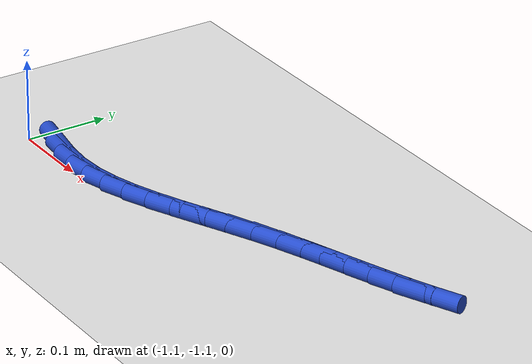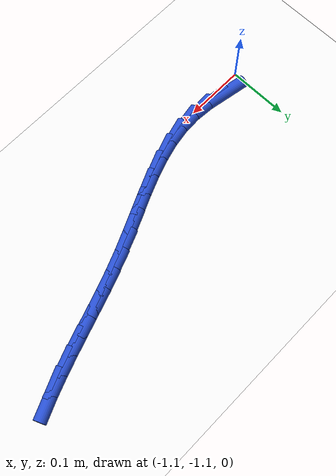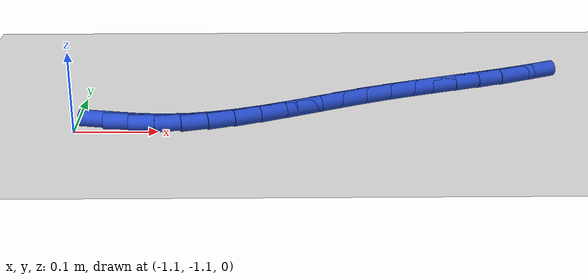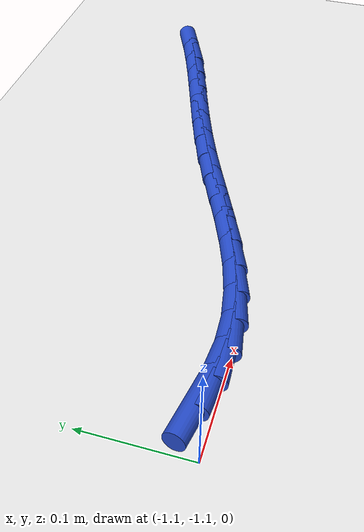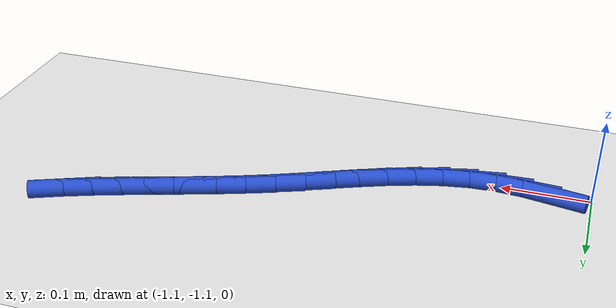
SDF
<sdf version="1.6">
 <world name="default">
  <model name="ground_plane">
   <static>1</static>
   <link name="link">
    <collision name="collision">
     <geometry><plane><normal>0 0 1</normal><size>100 100</size></plane></geometry>
     <surface><friction><ode><mu>100</mu><mu2>50</mu2></ode></friction></surface>
    </collision>
    <visual name="visual">
     <cast_shadows>0</cast_shadows>
     <geometry><plane><normal>0 0 1</normal><size>100 100</size></plane></geometry>
     <material>
      <script><uri>file://media/materials/scripts/gazebo.material</uri><name>Gazebo/WhiteGlow</name></script>
     </material>
    </visual>
   </link>
  </model>
  <model name="line">
   <link name="link_158">
    <pose>-1.05572384325815 -1.0857239371410612 0.01 0 1.57 -0.1781901428890386</pose>
    <collision name="collision">
     <geometry><cylinder><radius>0.01</radius><length>0.08</length></cylinder></geometry>
    </collision>
    <visual name="visual">
     <material>
      <script><name>Gazebo/Blue</name><uri>file://media/materials/scripts/gazebo.material</uri></script>
     </material>
     <geometry><cylinder><radius>0.01</radius><length>0.08</length></cylinder></geometry>
    </visual>
   </link>
   <link name="link_159">
    <pose>-1.0254811928255287 -1.0911706492456716 0.01 0 1.57 -0.07670855358000453</pose>
    <collision name="collision">
     <geometry><cylinder><radius>0.01</radius><length>0.08</length></cylinder></geometry>
    </collision>
    <visual name="visual">
     <material>
      <script><name>Gazebo/Blue</name><uri>file://media/materials/scripts/gazebo.material</uri></script>
     </material>
     <geometry><cylinder><radius>0.01</radius><length>0.08</length></cylinder></geometry>
    </visual>
   </link>
   <link name="link_160">
    <pose>-0.9953458273609315 -1.0934868342922237 0.01 0 1.57 0.04758001162439082</pose>
    <collision name="collision">
     <geometry><cylinder><radius>0.01</radius><length>0.08</length></cylinder></geometry>
    </collision>
    <visual name="visual">
     <material>
      <script><name>Gazebo/Blue</name><uri>file://media/materials/scripts/gazebo.material</uri></script>
     </material>
     <geometry><cylinder><radius>0.01</radius><length>0.08</length></cylinder></geometry>
    </visual>
   </link>
   <link name="link_161">
    <pose>-0.9652623973059331 -1.0920543832222926 0.01 0 1.57 0.1720860309842788</pose>
    <collision name="collision">
     <geometry><cylinder><radius>0.01</radius><length>0.08</length></cylinder></geometry>
    </collision>
    <visual name="visual">
     <material>
      <script><name>Gazebo/Blue</name><uri>file://media/materials/scripts/gazebo.material</uri></script>
     </material>
     <geometry><cylinder><radius>0.01</radius><length>0.08</length></cylinder></geometry>
    </visual>
   </link>
   <link name="link_162">
    <pose>-0.9351853055738792 -1.086826831507159 0.01 0 1.57 0.27098880094912264</pose>
    <collision name="collision">
     <geometry><cylinder><radius>0.01</radius><length>0.08</length></cylinder></geometry>
    </collision>
    <visual name="visual">
     <material>
      <script><name>Gazebo/Blue</name><uri>file://media/materials/scripts/gazebo.material</uri></script>
     </material>
     <geometry><cylinder><radius>0.01</radius><length>0.08</length></cylinder></geometry>
    </visual>
   </link>
   <link name="link_163">
    <pose>-0.9050809902659295 -1.0784631613435738 0.01 0 1.57 0.34373627839405074</pose>
    <collision name="collision">
     <geometry><cylinder><radius>0.01</radius><length>0.08</length></cylinder></geometry>
    </collision>
    <visual name="visual">
     <material>
      <script><name>Gazebo/Blue</name><uri>file://media/materials/scripts/gazebo.material</uri></script>
     </material>
     <geometry><cylinder><radius>0.01</radius><length>0.08</length></cylinder></geometry>
    </visual>
   </link>
   <link name="link_164">
    <pose>-0.8749166331043774 -1.0676659425401012 0.01 0 1.57 0.392565017161705</pose>
    <collision name="collision">
     <geometry><cylinder><radius>0.01</radius><length>0.08</length></cylinder></geometry>
    </collision>
    <visual name="visual">
     <material>
      <script><name>Gazebo/Blue</name><uri>file://media/materials/scripts/gazebo.material</uri></script>
     </material>
     <geometry><cylinder><radius>0.01</radius><length>0.08</length></cylinder></geometry>
    </visual>
   </link>
   <link name="link_165">
    <pose>-0.8446594158115183 -1.0551377449053065 0.01 0 1.57 0.4196827271843263</pose>
    <collision name="collision">
     <geometry><cylinder><radius>0.01</radius><length>0.08</length></cylinder></geometry>
    </collision>
    <visual name="visual">
     <material>
      <script><name>Gazebo/Blue</name><uri>file://media/materials/scripts/gazebo.material</uri></script>
     </material>
     <geometry><cylinder><radius>0.01</radius><length>0.08</length></cylinder></geometry>
    </visual>
   </link>
   <link name="link_166">
    <pose>-0.8142765201096458 -1.0415811382477542 0.01 0 1.57 0.42662735164104176</pose>
    <collision name="collision">
     <geometry><cylinder><radius>0.01</radius><length>0.08</length></cylinder></geometry>
    </collision>
    <visual name="visual">
     <material>
      <script><name>Gazebo/Blue</name><uri>file://media/materials/scripts/gazebo.material</uri></script>
     </material>
     <geometry><cylinder><radius>0.01</radius><length>0.08</length></cylinder></geometry>
    </visual>
   </link>
   <link name="link_167">
    <pose>-0.7837351277210541 -1.0276986923760094 0.01 0 1.57 0.41405218185598236</pose>
    <collision name="collision">
     <geometry><cylinder><radius>0.01</radius><length>0.08</length></cylinder></geometry>
    </collision>
    <visual name="visual">
     <material>
      <script><name>Gazebo/Blue</name><uri>file://media/materials/scripts/gazebo.material</uri></script>
     </material>
     <geometry><cylinder><radius>0.01</radius><length>0.08</length></cylinder></geometry>
    </visual>
   </link>
   <link name="link_168">
    <pose>-0.7530024203680372 -1.014192977098636 0.01 0 1.57 0.3838151236802919</pose>
    <collision name="collision">
     <geometry><cylinder><radius>0.01</radius><length>0.08</length></cylinder></geometry>
    </collision>
    <visual name="visual">
     <material>
      <script><name>Gazebo/Blue</name><uri>file://media/materials/scripts/gazebo.material</uri></script>
     </material>
     <geometry><cylinder><radius>0.01</radius><length>0.08</length></cylinder></geometry>
    </visual>
   </link>
   <link name="link_169">
    <pose>-0.7220573966785082 -1.0016960382665037 0.01 0 1.57 0.35414782322649935</pose>
    <collision name="collision">
     <geometry><cylinder><radius>0.01</radius><length>0.08</length></cylinder></geometry>
    </collision>
    <visual name="visual">
     <material>
      <script><name>Gazebo/Blue</name><uri>file://media/materials/scripts/gazebo.material</uri></script>
     </material>
     <geometry><cylinder><radius>0.01</radius><length>0.08</length></cylinder></geometry>
    </visual>
   </link>
   <link name="link_170">
    <pose>-0.690985029635339 -0.9902074608167016 0.01 0 1.57 0.33506101901091545</pose>
    <collision name="collision">
     <geometry><cylinder><radius>0.01</radius><length>0.08</length></cylinder></geometry>
    </collision>
    <visual name="visual">
     <material>
      <script><name>Gazebo/Blue</name><uri>file://media/materials/scripts/gazebo.material</uri></script>
     </material>
     <geometry><cylinder><radius>0.01</radius><length>0.08</length></cylinder></geometry>
    </visual>
   </link>
   <link name="link_171">
    <pose>-0.6599262106705068 -0.9793931052354287 0.01 0 1.57 0.32686704129674615</pose>
    <collision name="collision">
     <geometry><cylinder><radius>0.01</radius><length>0.08</length></cylinder></geometry>
    </collision>
    <visual name="visual">
     <material>
      <script><name>Gazebo/Blue</name><uri>file://media/materials/scripts/gazebo.material</uri></script>
     </material>
     <geometry><cylinder><radius>0.01</radius><length>0.08</length></cylinder></geometry>
    </visual>
   </link>
   <link name="link_172">
    <pose>-0.6290223352887473 -0.9689158236742884 0.01 0 1.57 0.3298103032573491</pose>
    <collision name="collision">
     <geometry><cylinder><radius>0.01</radius><length>0.08</length></cylinder></geometry>
    </collision>
    <visual name="visual">
     <material>
      <script><name>Gazebo/Blue</name><uri>file://media/materials/scripts/gazebo.material</uri></script>
     </material>
     <geometry><cylinder><radius>0.01</radius><length>0.08</length></cylinder></geometry>
    </visual>
   </link>
   <link name="link_173">
    <pose>-0.5984147989947953 -0.9584384682848844 0.01 0 1.57 0.34418895257216964</pose>
    <collision name="collision">
     <geometry><cylinder><radius>0.01</radius><length>0.08</length></cylinder></geometry>
    </collision>
    <visual name="visual">
     <material>
      <script><name>Gazebo/Blue</name><uri>file://media/materials/scripts/gazebo.material</uri></script>
     </material>
     <geometry><cylinder><radius>0.01</radius><length>0.08</length></cylinder></geometry>
    </visual>
   </link>
   <link name="link_174">
    <pose>-0.5682449972933868 -0.9476238912188206 0.01 0 1.57 0.3703470265345222</pose>
    <collision name="collision">
     <geometry><cylinder><radius>0.01</radius><length>0.08</length></cylinder></geometry>
    </collision>
    <visual name="visual">
     <material>
      <script><name>Gazebo/Blue</name><uri>file://media/materials/scripts/gazebo.material</uri></script>
     </material>
     <geometry><cylinder><radius>0.01</radius><length>0.08</length></cylinder></geometry>
    </visual>
   </link>
   <link name="link_175">
    <pose>-0.5386543256892579 -0.9361349446277017 0.01 0 1.57 0.4086181380449547</pose>
    <collision name="collision">
     <geometry><cylinder><radius>0.01</radius><length>0.08</length></cylinder></geometry>
    </collision>
    <visual name="visual">
     <material>
      <script><name>Gazebo/Blue</name><uri>file://media/materials/scripts/gazebo.material</uri></script>
     </material>
     <geometry><cylinder><radius>0.01</radius><length>0.08</length></cylinder></geometry>
    </visual>
   </link>
  </model>
 </world>
</sdf>
